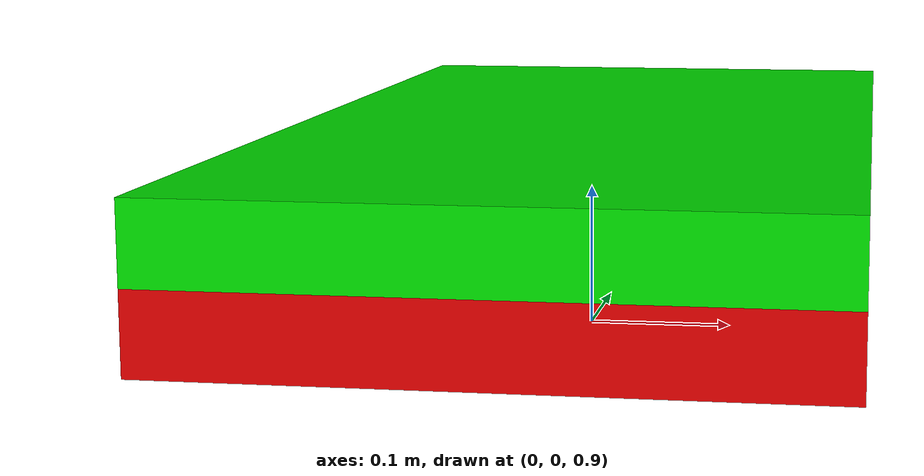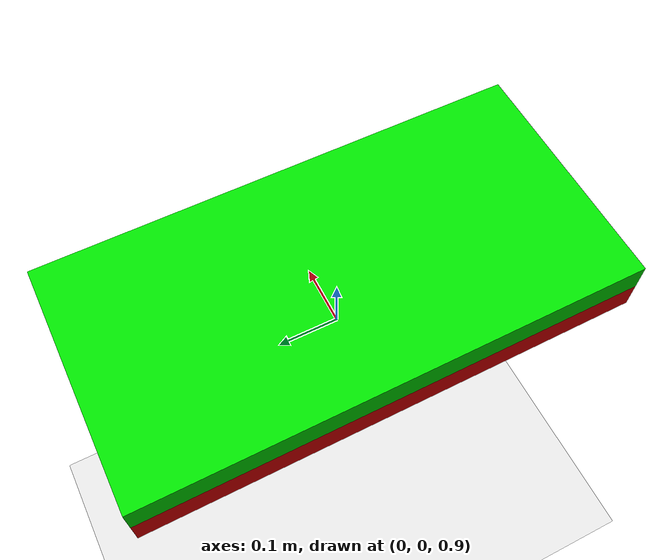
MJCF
<mujoco>
<option gravity="0 0 0" integrator = "RK4"/>
	<worldbody>
    <light diffuse=".5 .5 .5" pos="0 0 3" dir="0 0 -1"/>
	<geom type="plane" size="2.5 2.5 0.1" rgba=".9 .9 .9 1" pos="0 0 0"/>
		<body name="body 1" pos="0 0 1" xyaxes="1 0 0 0 1 0">
			<geom type="box" size="0.2 0.4 0.025" pos="0 0 0.025" rgba="0 0.9 0 1"/>
			<geom type="box" size="0.2 0.4 0.025" pos="0 0 -0.025" rgba="0.9 0 0 1"/>
			<joint type="free"/>
		</body>
	</worldbody>
</mujoco>
